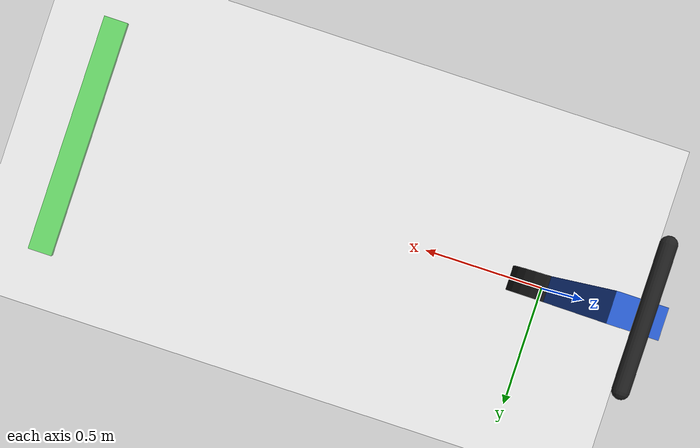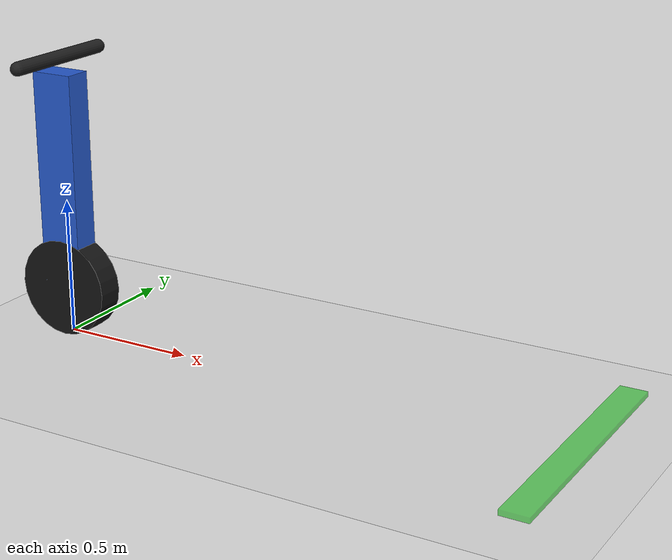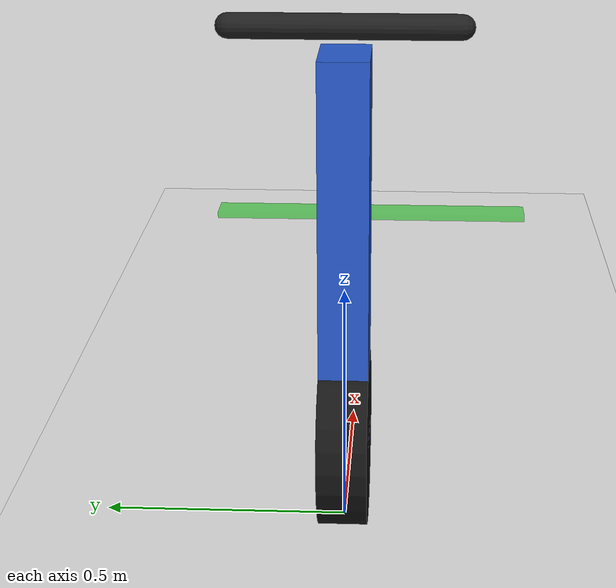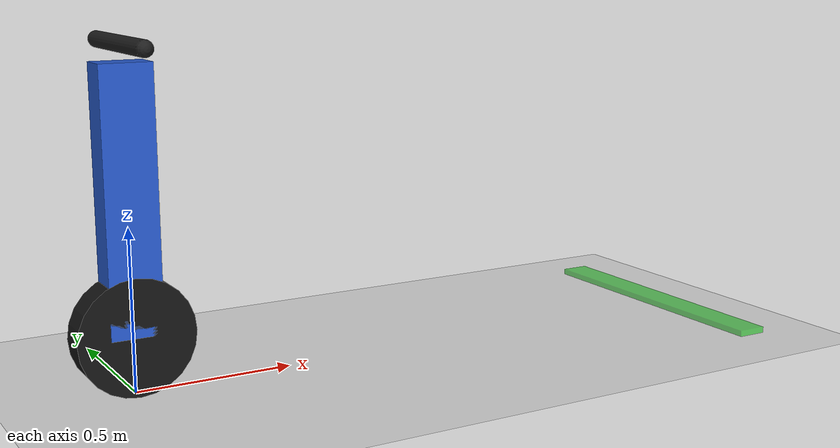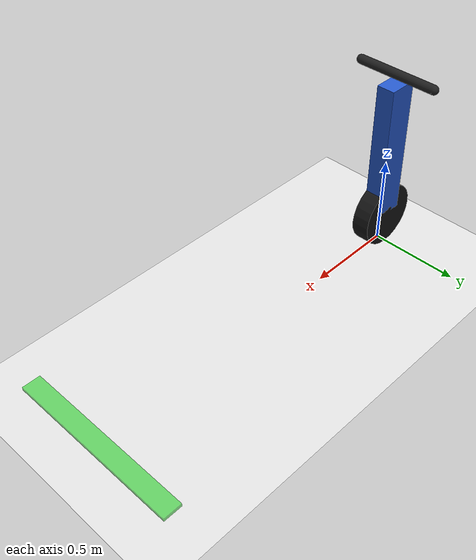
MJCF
<mujoco model="segway_1d_fast">

  <compiler angle="radian"/>

  <option timestep="0.002" gravity="0 0 -9.81" integrator="Euler"/>

  <visual>
    <headlight diffuse="0.8 0.8 0.8" ambient="0.5 0.5 0.5" specular="0.2 0.2 0.2"/>
  </visual>

  <default>
    <joint damping="0.01" armature="0.001"/>
  </default>

  <worldbody>
    <light pos="0 0 6" dir="0 0 -1" diffuse="1 1 1" specular="0.3 0.3 0.3"/>

    <!-- Ground: visual reference only — ghost so no contact computation -->
    <geom name="ground" type="plane" size="10 10 0.1"
          rgba="0.88 0.88 0.88 1"
          contype="0" conaffinity="0"/>

    <!-- Goal marker: thin box at x=2, purely visual -->
    <geom name="goal_marker" type="box"
          pos="2.0 0 0.01" size="0.05 0.5 0.01"
          rgba="0.1 0.8 0.1 0.6"
          contype="0" conaffinity="0"/>

    <body name="segway" pos="0 0 0.18">

      <joint name="x_slide"    type="slide" axis="1 0 0"/>
      <joint name="body_pitch" type="hinge" axis="0 1 0"/>

      <!-- Wheel — visual only -->
      <geom name="wheel" type="cylinder"
            size="0.18 0.05" pos="0 0 0" euler="1.5708 0 0"
            mass="0.5" rgba="0.08 0.08 0.08 1"
            contype="0" conaffinity="0"/>

      <!-- Spoke cross — makes wheel spin visible in renders -->
      <geom name="spoke_h" type="box"
            size="0.17 0.008 0.008" pos="0 0 0"
            mass="0" rgba="0.5 0.5 0.5 1"
            contype="0" conaffinity="0"/>
      <geom name="spoke_v" type="box"
            size="0.008 0.008 0.17" pos="0 0 0"
            mass="0" rgba="0.5 0.5 0.5 1"
            contype="0" conaffinity="0"/>

      <!-- Pole (main body) — visual only -->
      <geom name="pole" type="box"
            size="0.08 0.05 0.40" pos="0 0 0.40"
            mass="8.0" rgba="0.15 0.35 0.80 1"
            contype="0" conaffinity="0"/>

      <!-- Handlebar — visual only -->
      <geom name="handle" type="capsule"
            fromto="0 -0.22 0.85 0 0.22 0.85" size="0.025"
            mass="1.0" rgba="0.12 0.12 0.12 1"
            contype="0" conaffinity="0"/>

    </body>
  </worldbody>

  <actuator>
    <!--
      Horizontal force on x_slide.
      ±30 N: enough to balance and navigate (ctrl/grav ratio ≈ 3x at θ=0.1 rad).
      Positive force → +x direction.  No sign flip needed in env_step.
    -->
    <motor name="drive" joint="x_slide" gear="1"
           ctrllimited="true" ctrlrange="-30 30"/>
  </actuator>

</mujoco>
